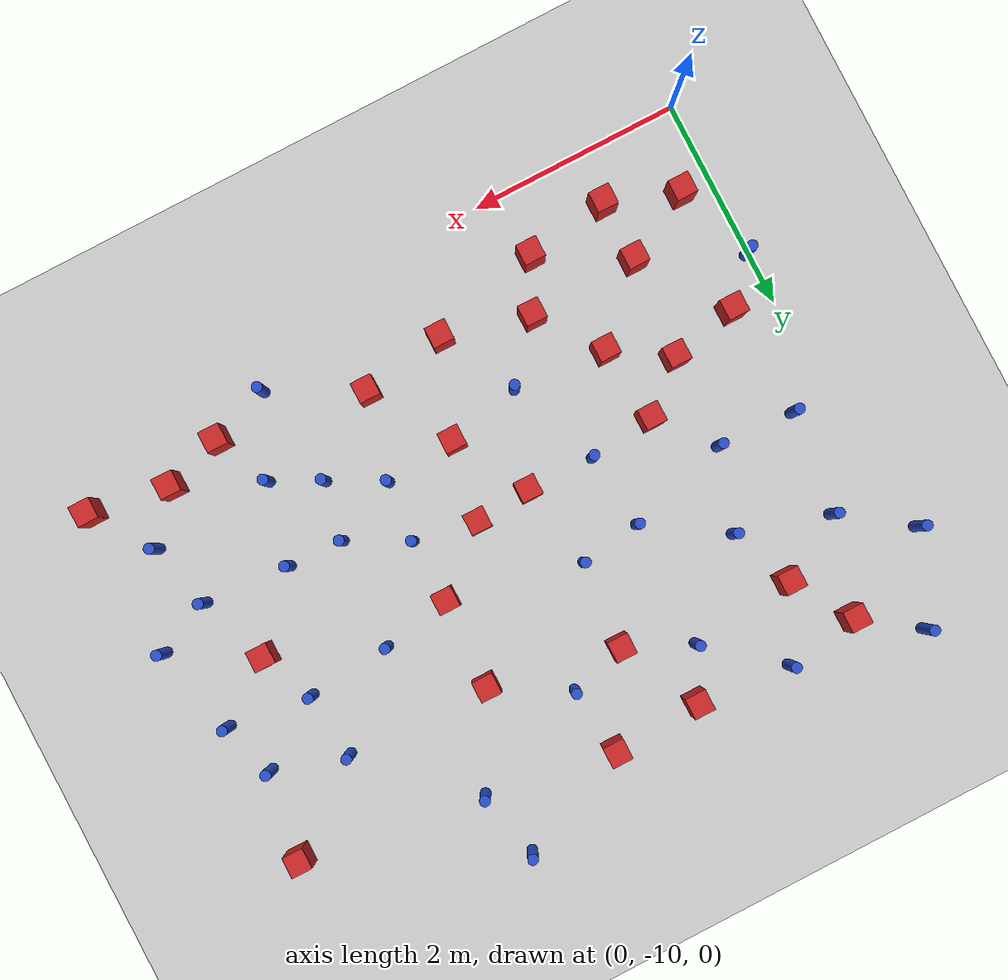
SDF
<sdf version="1.6">
 <world name="default">
  <model name="ground_plane">
   <static>1</static>
   <link name="link">
    <collision name="collision">
     <geometry><plane><normal>0 0 1</normal><size>100 100</size></plane></geometry>
     <surface><friction><ode><mu>100</mu><mu2>50</mu2></ode></friction></surface>
    </collision>
    <visual name="visual">
     <cast_shadows>0</cast_shadows>
     <geometry><plane><normal>0 0 1</normal><size>100 100</size></plane></geometry>
     <material>
      <ambient>1.0 1.0 1.0 1.0</ambient>
      <diffuse>0.8 0.8 0.8 1.0</diffuse>
      <specular>0.01 0.01 0.01 1.000000</specular>
     </material>
    </visual>
   </link>
  </model>
  <model name="square_post_obstacle1">
   <static>true</static>
   <pose>3.16889082667 -8.21501041184 1.91545236811e-07 -7.35059704564e-06 1.12565212e-07 2.39332434364e-05</pose>
   <link name="link">
    <pose>0 0 0.25 0 -0 0</pose>
    <inertial>
     <mass>100</mass>
     <inertia>
      <ixx>0.166667</ixx>
      <ixy>0</ixy>
      <ixz>0</ixz>
      <iyy>0.166667</iyy>
      <iyz>0</iyz>
      <izz>0.166667</izz>
     </inertia>
    </inertial>
    <collision name="collision"><geometry><box><size>.2 .2 .5</size></box></geometry></collision>
    <visual name="visual">
     <geometry><box><size>.2 .2 .5</size></box></geometry>
     <material>
      <script><name>Gazebo/Red</name><uri>file://media/materials/scripts/gazebo.material</uri></script>
     </material>
    </visual>
   </link>
  </model>
  <model name="square_post_obstacle12">
   <static>true</static>
   <pose>0.404167594741 -8.10818118871 1.91545236811e-07 -7.35059704564e-06 1.12565212e-07 2.39332434364e-05</pose>
   <link name="link">
    <pose>0 0 0.25 0 -0 0</pose>
    <inertial>
     <mass>100</mass>
     <inertia>
      <ixx>0.166667</ixx>
      <ixy>0</ixy>
      <ixz>0</ixz>
      <iyy>0.166667</iyy>
      <iyz>0</iyz>
      <izz>0.166667</izz>
     </inertia>
    </inertial>
    <collision name="collision"><geometry><box><size>.2 .2 .5</size></box></geometry></collision>
    <visual name="visual">
     <geometry><box><size>.2 .2 .5</size></box></geometry>
     <material>
      <script><name>Gazebo/Red</name><uri>file://media/materials/scripts/gazebo.material</uri></script>
     </material>
    </visual>
   </link>
  </model>
  <model name="square_post_obstacle15">
   <static>true</static>
   <pose>1.50309372421 -7.58272821332 1.91545236811e-07 -7.35059704564e-06 1.12565212e-07 2.39332434364e-05</pose>
   <link name="link">
    <pose>0 0 0.25 0 -0 0</pose>
    <inertial>
     <mass>100</mass>
     <inertia>
      <ixx>0.166667</ixx>
      <ixy>0</ixy>
      <ixz>0</ixz>
      <iyy>0.166667</iyy>
      <iyz>0</iyz>
      <izz>0.166667</izz>
     </inertia>
    </inertial>
    <collision name="collision"><geometry><box><size>.2 .2 .5</size></box></geometry></collision>
    <visual name="visual">
     <geometry><box><size>.2 .2 .5</size></box></geometry>
     <material>
      <script><name>Gazebo/Red</name><uri>file://media/materials/scripts/gazebo.material</uri></script>
     </material>
    </visual>
   </link>
  </model>
  <model name="square_post_obstacle16">
   <static>true</static>
   <pose>3.90854082336 -6.12980230415 1.91545236811e-07 -7.35059704564e-06 1.12565212e-07 2.39332434364e-05</pose>
   <link name="link">
    <pose>0 0 0.25 0 -0 0</pose>
    <inertial>
     <mass>100</mass>
     <inertia>
      <ixx>0.166667</ixx>
      <ixy>0</ixy>
      <ixz>0</ixz>
      <iyy>0.166667</iyy>
      <iyz>0</iyz>
      <izz>0.166667</izz>
     </inertia>
    </inertial>
    <collision name="collision"><geometry><box><size>.2 .2 .5</size></box></geometry></collision>
    <visual name="visual">
     <geometry><box><size>.2 .2 .5</size></box></geometry>
     <material>
      <script><name>Gazebo/Red</name><uri>file://media/materials/scripts/gazebo.material</uri></script>
     </material>
    </visual>
   </link>
  </model>
  <model name="square_post_obstacle18">
   <static>true</static>
   <pose>2.83658373215 -9.09488576402 1.91545236811e-07 -7.35059704564e-06 1.12565212e-07 2.39332434364e-05</pose>
   <link name="link">
    <pose>0 0 0.25 0 -0 0</pose>
    <inertial>
     <mass>100</mass>
     <inertia>
      <ixx>0.166667</ixx>
      <ixy>0</ixy>
      <ixz>0</ixz>
      <iyy>0.166667</iyy>
      <iyz>0</iyz>
      <izz>0.166667</izz>
     </inertia>
    </inertial>
    <collision name="collision"><geometry><box><size>.2 .2 .5</size></box></geometry></collision>
    <visual name="visual">
     <geometry><box><size>.2 .2 .5</size></box></geometry>
     <material>
      <script><name>Gazebo/Red</name><uri>file://media/materials/scripts/gazebo.material</uri></script>
     </material>
    </visual>
   </link>
  </model>
  <model name="square_post_obstacle26">
   <static>true</static>
   <pose>1.58247078217 -8.30444190628 1.91545236811e-07 -7.35059704564e-06 1.12565212e-07 2.39332434364e-05</pose>
   <link name="link">
    <pose>0 0 0.25 0 -0 0</pose>
    <inertial>
     <mass>100</mass>
     <inertia>
      <ixx>0.166667</ixx>
      <ixy>0</ixy>
      <ixz>0</ixz>
      <iyy>0.166667</iyy>
      <iyz>0</iyz>
      <izz>0.166667</izz>
     </inertia>
    </inertial>
    <collision name="collision"><geometry><box><size>.2 .2 .5</size></box></geometry></collision>
    <visual name="visual">
     <geometry><box><size>.2 .2 .5</size></box></geometry>
     <material>
      <script><name>Gazebo/Red</name><uri>file://media/materials/scripts/gazebo.material</uri></script>
     </material>
    </visual>
   </link>
  </model>
  <model name="pole_obstacle27">
   <static>true</static>
   <pose>2.04881909748 -6.78771270594 7.38925637345e-09 -8.47170692799e-08 1.24976765014e-08 -1.7451309302e-07</pose>
   <link name="link">
    <pose>0 0 0.3 0 -0 0</pose>
    <inertial>
     <mass>1</mass>
     <inertia><ixx>0.145833</ixx><ixy>0</ixy><ixz>0</ixz><iyy>0.145833</iyy><iyz>0</iyz><izz>0.125</izz></inertia>
    </inertial>
    <collision name="collision">
     <geometry><cylinder><radius>0.05</radius><length>.6</length></cylinder></geometry>
    </collision>
    <visual name="visual">
     <geometry><cylinder><radius>0.05</radius><length>.6</length></cylinder></geometry>
     <material>
      <script><name>Gazebo/Blue</name><uri>file://media/materials/scripts/gazebo.material</uri></script>
     </material>
    </visual>
   </link>
  </model>
  <model name="pole_obstacle36">
   <static>true</static>
   <pose>4.37151992922 -5.27097383217 7.38925637345e-09 -8.47170692796e-08 1.24976764786e-08 -1.74513093032e-07</pose>
   <link name="link">
    <pose>0 0 0.3 0 -0 0</pose>
    <inertial>
     <mass>1</mass>
     <inertia><ixx>0.145833</ixx><ixy>0</ixy><ixz>0</ixz><iyy>0.145833</iyy><iyz>0</iyz><izz>0.125</izz></inertia>
    </inertial>
    <collision name="collision">
     <geometry><cylinder><radius>0.05</radius><length>.6</length></cylinder></geometry>
    </collision>
    <visual name="visual">
     <geometry><cylinder><radius>0.05</radius><length>.6</length></cylinder></geometry>
     <material>
      <script><name>Gazebo/Blue</name><uri>file://media/materials/scripts/gazebo.material</uri></script>
     </material>
    </visual>
   </link>
  </model>
  <model name="pole_obstacle37">
   <static>true</static>
   <pose>5.33299857243 -6.77661825422 7.38925637345e-09 -8.47170692796e-08 1.24976764786e-08 -1.74513093032e-07</pose>
   <link name="link">
    <pose>0 0 0.3 0 -0 0</pose>
    <inertial>
     <mass>1</mass>
     <inertia><ixx>0.145833</ixx><ixy>0</ixy><ixz>0</ixz><iyy>0.145833</iyy><iyz>0</iyz><izz>0.125</izz></inertia>
    </inertial>
    <collision name="collision">
     <geometry><cylinder><radius>0.05</radius><length>.6</length></cylinder></geometry>
    </collision>
    <visual name="visual">
     <geometry><cylinder><radius>0.05</radius><length>.6</length></cylinder></geometry>
     <material>
      <script><name>Gazebo/Blue</name><uri>file://media/materials/scripts/gazebo.material</uri></script>
     </material>
    </visual>
   </link>
  </model>
  <model name="pole_obstacle40">
   <static>true</static>
   <pose>4.47637173607 -9.40463256713 7.38925637345e-09 -8.471706928e-08 1.24976765081e-08 -1.74513093015e-07</pose>
   <link name="link">
    <pose>0 0 0.3 0 -0 0</pose>
    <inertial>
     <mass>1</mass>
     <inertia><ixx>0.145833</ixx><ixy>0</ixy><ixz>0</ixz><iyy>0.145833</iyy><iyz>0</iyz><izz>0.125</izz></inertia>
    </inertial>
    <collision name="collision">
     <geometry><cylinder><radius>0.05</radius><length>.6</length></cylinder></geometry>
    </collision>
    <visual name="visual">
     <geometry><cylinder><radius>0.05</radius><length>.6</length></cylinder></geometry>
     <material>
      <script><name>Gazebo/Blue</name><uri>file://media/materials/scripts/gazebo.material</uri></script>
     </material>
    </visual>
   </link>
  </model>
  <model name="pole_obstacle42">
   <static>true</static>
   <pose>1.07115340988 -7.07195160746 7.38925637345e-09 -8.47170692799e-08 1.24976765033e-08 -1.74513093018e-07</pose>
   <link name="link">
    <pose>0 0 0.3 0 -0 0</pose>
    <inertial>
     <mass>1</mass>
     <inertia><ixx>0.145833</ixx><ixy>0</ixy><ixz>0</ixz><iyy>0.145833</iyy><iyz>0</iyz><izz>0.125</izz></inertia>
    </inertial>
    <collision name="collision">
     <geometry><cylinder><radius>0.05</radius><length>.6</length></cylinder></geometry>
    </collision>
    <visual name="visual">
     <geometry><cylinder><radius>0.05</radius><length>.6</length></cylinder></geometry>
     <material>
      <script><name>Gazebo/Blue</name><uri>file://media/materials/scripts/gazebo.material</uri></script>
     </material>
    </visual>
   </link>
  </model>
  <model name="pole_obstacle45">
   <static>true</static>
   <pose>0.453988505634 -6.06256383963 7.38925637345e-09 -8.471706928e-08 1.24976765095e-08 -1.74513093014e-07</pose>
   <link name="link">
    <pose>0 0 0.3 0 -0 0</pose>
    <inertial>
     <mass>1</mass>
     <inertia><ixx>0.145833</ixx><ixy>0</ixy><ixz>0</ixz><iyy>0.145833</iyy><iyz>0</iyz><izz>0.125</izz></inertia>
    </inertial>
    <collision name="collision">
     <geometry><cylinder><radius>0.05</radius><length>.6</length></cylinder></geometry>
    </collision>
    <visual name="visual">
     <geometry><cylinder><radius>0.05</radius><length>.6</length></cylinder></geometry>
     <material>
      <script><name>Gazebo/Blue</name><uri>file://media/materials/scripts/gazebo.material</uri></script>
     </material>
    </visual>
   </link>
  </model>
  <model name="square_post_obstacle44">
   <static>true</static>
   <pose>1.05257040129 -7.96837718606 1.91545236811e-07 -7.35059704564e-06 1.12565212e-07 2.39332434364e-05</pose>
   <link name="link">
    <pose>0 0 0.25 0 -0 0</pose>
    <inertial>
     <mass>100</mass>
     <inertia>
      <ixx>0.166667</ixx>
      <ixy>0</ixy>
      <ixz>0</ixz>
      <iyy>0.166667</iyy>
      <iyz>0</iyz>
      <izz>0.166667</izz>
     </inertia>
    </inertial>
    <collision name="collision"><geometry><box><size>.2 .2 .5</size></box></geometry></collision>
    <visual name="visual">
     <geometry><box><size>.2 .2 .5</size></box></geometry>
     <material>
      <script><name>Gazebo/Red</name><uri>file://media/materials/scripts/gazebo.material</uri></script>
     </material>
    </visual>
   </link>
  </model>
  <model name="pole_obstacle48">
   <static>true</static>
   <pose>3.84900225517 -8.15671670072 7.38925637345e-09 -8.47170692793e-08 1.24976764408e-08 -1.74513093041e-07</pose>
   <link name="link">
    <pose>0 0 0.3 0 -0 0</pose>
    <inertial>
     <mass>1</mass>
     <inertia><ixx>0.145833</ixx><ixy>0</ixy><ixz>0</ixz><iyy>0.145833</iyy><iyz>0</iyz><izz>0.125</izz></inertia>
    </inertial>
    <collision name="collision">
     <geometry><cylinder><radius>0.05</radius><length>.6</length></cylinder></geometry>
    </collision>
    <visual name="visual">
     <geometry><cylinder><radius>0.05</radius><length>.6</length></cylinder></geometry>
     <material>
      <script><name>Gazebo/Blue</name><uri>file://media/materials/scripts/gazebo.material</uri></script>
     </material>
    </visual>
   </link>
  </model>
  <model name="pole_obstacle49">
   <static>true</static>
   <pose>2.0757942542 -5.59627467232 7.38925637345e-09 -8.47170692798e-08 1.24976765033e-08 -1.74513093019e-07</pose>
   <link name="link">
    <pose>0 0 0.3 0 -0 0</pose>
    <inertial>
     <mass>1</mass>
     <inertia><ixx>0.145833</ixx><ixy>0</ixy><ixz>0</ixz><iyy>0.145833</iyy><iyz>0</iyz><izz>0.125</izz></inertia>
    </inertial>
    <collision name="collision">
     <geometry><cylinder><radius>0.05</radius><length>.6</length></cylinder></geometry>
    </collision>
    <visual name="visual">
     <geometry><cylinder><radius>0.05</radius><length>.6</length></cylinder></geometry>
     <material>
      <script><name>Gazebo/Blue</name><uri>file://media/materials/scripts/gazebo.material</uri></script>
     </material>
    </visual>
   </link>
  </model>
  <model name="pole_obstacle51">
   <static>true</static>
   <pose>3.89824620744 -7.58099984465 7.38925637345e-09 -8.47170692798e-08 1.24976765033e-08 -1.74513093019e-07</pose>
   <link name="link">
    <pose>0 0 0.3 0 -0 0</pose>
    <inertial>
     <mass>1</mass>
     <inertia><ixx>0.145833</ixx><ixy>0</ixy><ixz>0</ixz><iyy>0.145833</iyy><iyz>0</iyz><izz>0.125</izz></inertia>
    </inertial>
    <collision name="collision">
     <geometry><cylinder><radius>0.05</radius><length>.6</length></cylinder></geometry>
    </collision>
    <visual name="visual">
     <geometry><cylinder><radius>0.05</radius><length>.6</length></cylinder></geometry>
     <material>
      <script><name>Gazebo/Blue</name><uri>file://media/materials/scripts/gazebo.material</uri></script>
     </material>
    </visual>
   </link>
  </model>
  <model name="square_post_obstacle69">
   <static>true</static>
   <pose>0.976133610761 -8.91479069162 1.91545236811e-07 -7.35059704564e-06 1.12565212e-07 2.39332434364e-05</pose>
   <link name="link">
    <pose>0 0 0.25 0 -0 0</pose>
    <inertial>
     <mass>100</mass>
     <inertia>
      <ixx>0.166667</ixx>
      <ixy>0</ixy>
      <ixz>0</ixz>
      <iyy>0.166667</iyy>
      <iyz>0</iyz>
      <izz>0.166667</izz>
     </inertia>
    </inertial>
    <collision name="collision"><geometry><box><size>.2 .2 .5</size></box></geometry></collision>
    <visual name="visual">
     <geometry><box><size>.2 .2 .5</size></box></geometry>
     <material>
      <script><name>Gazebo/Red</name><uri>file://media/materials/scripts/gazebo.material</uri></script>
     </material>
    </visual>
   </link>
  </model>
  <model name="pole_obstacle76">
   <static>true</static>
   <pose>4.98600005805 -7.89811427196 7.38925637345e-09 -8.47170692796e-08 1.24976764786e-08 -1.74513093032e-07</pose>
   <link name="link">
    <pose>0 0 0.3 0 -0 0</pose>
    <inertial>
     <mass>1</mass>
     <inertia><ixx>0.145833</ixx><ixy>0</ixy><ixz>0</ixz><iyy>0.145833</iyy><iyz>0</iyz><izz>0.125</izz></inertia>
    </inertial>
    <collision name="collision">
     <geometry><cylinder><radius>0.05</radius><length>.6</length></cylinder></geometry>
    </collision>
    <visual name="visual">
     <geometry><cylinder><radius>0.05</radius><length>.6</length></cylinder></geometry>
     <material>
      <script><name>Gazebo/Blue</name><uri>file://media/materials/scripts/gazebo.material</uri></script>
     </material>
    </visual>
   </link>
  </model>
  <model name="pole_obstacle79">
   <static>true</static>
   <pose>6.1250744416 -6.87208545024 7.38925637345e-09 -8.47170692796e-08 1.24976764786e-08 -1.74513093032e-07</pose>
   <link name="link">
    <pose>0 0 0.3 0 -0 0</pose>
    <inertial>
     <mass>1</mass>
     <inertia><ixx>0.145833</ixx><ixy>0</ixy><ixz>0</ixz><iyy>0.145833</iyy><iyz>0</iyz><izz>0.125</izz></inertia>
    </inertial>
    <collision name="collision">
     <geometry><cylinder><radius>0.05</radius><length>.6</length></cylinder></geometry>
    </collision>
    <visual name="visual">
     <geometry><cylinder><radius>0.05</radius><length>.6</length></cylinder></geometry>
     <material>
      <script><name>Gazebo/Blue</name><uri>file://media/materials/scripts/gazebo.material</uri></script>
     </material>
    </visual>
   </link>
  </model>
  <model name="square_post_obstacle79">
   <static>true</static>
   <pose>6.08900909891 -5.53988913729 1.91545236811e-07 -7.35059704564e-06 1.12565212e-07 2.39332434364e-05</pose>
   <link name="link">
    <pose>0 0 0.25 0 -0 0</pose>
    <inertial>
     <mass>100</mass>
     <inertia>
      <ixx>0.166667</ixx>
      <ixy>0</ixy>
      <ixz>0</ixz>
      <iyy>0.166667</iyy>
      <iyz>0</iyz>
      <izz>0.166667</izz>
     </inertia>
    </inertial>
    <collision name="collision"><geometry><box><size>.2 .2 .5</size></box></geometry></collision>
    <visual name="visual">
     <geometry><box><size>.2 .2 .5</size></box></geometry>
     <material>
      <script><name>Gazebo/Red</name><uri>file://media/materials/scripts/gazebo.material</uri></script>
     </material>
    </visual>
   </link>
  </model>
  <model name="pole_obstacle80">
   <static>true</static>
   <pose>6.33364297572 -7.72173572609 7.38925637345e-09 -8.47170692796e-08 1.24976764786e-08 -1.74513093032e-07</pose>
   <link name="link">
    <pose>0 0 0.3 0 -0 0</pose>
    <inertial>
     <mass>1</mass>
     <inertia><ixx>0.145833</ixx><ixy>0</ixy><ixz>0</ixz><iyy>0.145833</iyy><iyz>0</iyz><izz>0.125</izz></inertia>
    </inertial>
    <collision name="collision">
     <geometry><cylinder><radius>0.05</radius><length>.6</length></cylinder></geometry>
    </collision>
    <visual name="visual">
     <geometry><cylinder><radius>0.05</radius><length>.6</length></cylinder></geometry>
     <material>
      <script><name>Gazebo/Blue</name><uri>file://media/materials/scripts/gazebo.material</uri></script>
     </material>
    </visual>
   </link>
  </model>
  <model name="pole_obstacle85">
   <static>true</static>
   <pose>2.12412852441 -7.50402201474 7.38925637345e-09 -8.47170692798e-08 1.24976765033e-08 -1.74513093019e-07</pose>
   <link name="link">
    <pose>0 0 0.3 0 -0 0</pose>
    <inertial>
     <mass>1</mass>
     <inertia><ixx>0.145833</ixx><ixy>0</ixy><ixz>0</ixz><iyy>0.145833</iyy><iyz>0</iyz><izz>0.125</izz></inertia>
    </inertial>
    <collision name="collision">
     <geometry><cylinder><radius>0.05</radius><length>.6</length></cylinder></geometry>
    </collision>
    <visual name="visual">
     <geometry><cylinder><radius>0.05</radius><length>.6</length></cylinder></geometry>
     <material>
      <script><name>Gazebo/Blue</name><uri>file://media/materials/scripts/gazebo.material</uri></script>
     </material>
    </visual>
   </link>
  </model>
  <model name="square_post_obstacle80">
   <static>true</static>
   <pose>3.64129434278 -8.9638723024 1.91545236811e-07 -7.35059704564e-06 1.12565212e-07 2.39332434364e-05</pose>
   <link name="link">
    <pose>0 0 0.25 0 -0 0</pose>
    <inertial>
     <mass>100</mass>
     <inertia>
      <ixx>0.166667</ixx>
      <ixy>0</ixy>
      <ixz>0</ixz>
      <iyy>0.166667</iyy>
      <iyz>0</iyz>
      <izz>0.166667</izz>
     </inertia>
    </inertial>
    <collision name="collision"><geometry><box><size>.2 .2 .5</size></box></geometry></collision>
    <visual name="visual">
     <geometry><box><size>.2 .2 .5</size></box></geometry>
     <material>
      <script><name>Gazebo/Red</name><uri>file://media/materials/scripts/gazebo.material</uri></script>
     </material>
    </visual>
   </link>
  </model>
  <model name="pole_obstacle92">
   <static>true</static>
   <pose>4.53692902009 -6.8501888442 7.38925637345e-09 -8.47170692796e-08 1.24976764786e-08 -1.74513093032e-07</pose>
   <link name="link">
    <pose>0 0 0.3 0 -0 0</pose>
    <inertial>
     <mass>1</mass>
     <inertia><ixx>0.145833</ixx><ixy>0</ixy><ixz>0</ixz><iyy>0.145833</iyy><iyz>0</iyz><izz>0.125</izz></inertia>
    </inertial>
    <collision name="collision">
     <geometry><cylinder><radius>0.05</radius><length>.6</length></cylinder></geometry>
    </collision>
    <visual name="visual">
     <geometry><cylinder><radius>0.05</radius><length>.6</length></cylinder></geometry>
     <material>
      <script><name>Gazebo/Blue</name><uri>file://media/materials/scripts/gazebo.material</uri></script>
     </material>
    </visual>
   </link>
  </model>
  <model name="pole_obstacle94">
   <static>true</static>
   <pose>5.96373415103 -8.58227947369 7.38925637345e-09 -8.471706928e-08 1.24976765081e-08 -1.74513093015e-07</pose>
   <link name="link">
    <pose>0 0 0.3 0 -0 0</pose>
    <inertial>
     <mass>1</mass>
     <inertia><ixx>0.145833</ixx><ixy>0</ixy><ixz>0</ixz><iyy>0.145833</iyy><iyz>0</iyz><izz>0.125</izz></inertia>
    </inertial>
    <collision name="collision">
     <geometry><cylinder><radius>0.05</radius><length>.6</length></cylinder></geometry>
    </collision>
    <visual name="visual">
     <geometry><cylinder><radius>0.05</radius><length>.6</length></cylinder></geometry>
     <material>
      <script><name>Gazebo/Blue</name><uri>file://media/materials/scripts/gazebo.material</uri></script>
     </material>
    </visual>
   </link>
  </model>
  <model name="pole_obstacle95">
   <static>true</static>
   <pose>0.0353014993979 -8.49636491938 7.38925637345e-09 -8.47170692796e-08 1.24976764747e-08 -1.74513093035e-07</pose>
   <link name="link">
    <pose>0 0 0.3 0 -0 0</pose>
    <inertial>
     <mass>1</mass>
     <inertia><ixx>0.145833</ixx><ixy>0</ixy><ixz>0</ixz><iyy>0.145833</iyy><iyz>0</iyz><izz>0.125</izz></inertia>
    </inertial>
    <collision name="collision">
     <geometry><cylinder><radius>0.05</radius><length>.6</length></cylinder></geometry>
    </collision>
    <visual name="visual">
     <geometry><cylinder><radius>0.05</radius><length>.6</length></cylinder></geometry>
     <material>
      <script><name>Gazebo/Blue</name><uri>file://media/materials/scripts/gazebo.material</uri></script>
     </material>
    </visual>
   </link>
  </model>
  <model name="square_post_obstacle86">
   <static>true</static>
   <pose>2.6891353956 -5.88927801813 1.91545236811e-07 -7.35059704564e-06 1.12565212e-07 2.39332434364e-05</pose>
   <link name="link">
    <pose>0 0 0.25 0 -0 0</pose>
    <inertial>
     <mass>100</mass>
     <inertia>
      <ixx>0.166667</ixx>
      <ixy>0</ixy>
      <ixz>0</ixz>
      <iyy>0.166667</iyy>
      <iyz>0</iyz>
      <izz>0.166667</izz>
     </inertia>
    </inertial>
    <collision name="collision"><geometry><box><size>.2 .2 .5</size></box></geometry></collision>
    <visual name="visual">
     <geometry><box><size>.2 .2 .5</size></box></geometry>
     <material>
      <script><name>Gazebo/Red</name><uri>file://media/materials/scripts/gazebo.material</uri></script>
     </material>
    </visual>
   </link>
  </model>
  <model name="square_post_obstacle87">
   <static>true</static>
   <pose>3.15219123084 -5.08765713504 1.91545236811e-07 -7.35059704564e-06 1.12565212e-07 2.39332434364e-05</pose>
   <link name="link">
    <pose>0 0 0.25 0 -0 0</pose>
    <inertial>
     <mass>100</mass>
     <inertia>
      <ixx>0.166667</ixx>
      <ixy>0</ixy>
      <ixz>0</ixz>
      <iyy>0.166667</iyy>
      <iyz>0</iyz>
      <izz>0.166667</izz>
     </inertia>
    </inertial>
    <collision name="collision"><geometry><box><size>.2 .2 .5</size></box></geometry></collision>
    <visual name="visual">
     <geometry><box><size>.2 .2 .5</size></box></geometry>
     <material>
      <script><name>Gazebo/Red</name><uri>file://media/materials/scripts/gazebo.material</uri></script>
     </material>
    </visual>
   </link>
  </model>
  <model name="pole_obstacle99">
   <static>true</static>
   <pose>1.4203689856 -5.03889295285 7.38925637345e-09 -8.47170692799e-08 1.24976765033e-08 -1.74513093018e-07</pose>
   <link name="link">
    <pose>0 0 0.3 0 -0 0</pose>
    <inertial>
     <mass>1</mass>
     <inertia><ixx>0.145833</ixx><ixy>0</ixy><ixz>0</ixz><iyy>0.145833</iyy><iyz>0</iyz><izz>0.125</izz></inertia>
    </inertial>
    <collision name="collision">
     <geometry><cylinder><radius>0.05</radius><length>.6</length></cylinder></geometry>
    </collision>
    <visual name="visual">
     <geometry><cylinder><radius>0.05</radius><length>.6</length></cylinder></geometry>
     <material>
      <script><name>Gazebo/Blue</name><uri>file://media/materials/scripts/gazebo.material</uri></script>
     </material>
    </visual>
   </link>
  </model>
  <model name="pole_obstacle102">
   <static>true</static>
   <pose>5.80563965369 -7.9541600659 7.38925637345e-09 -8.47170692798e-08 1.24976764934e-08 -1.74513093022e-07</pose>
   <link name="link">
    <pose>0 0 0.3 0 -0 0</pose>
    <inertial>
     <mass>1</mass>
     <inertia><ixx>0.145833</ixx><ixy>0</ixy><ixz>0</ixz><iyy>0.145833</iyy><iyz>0</iyz><izz>0.125</izz></inertia>
    </inertial>
    <collision name="collision">
     <geometry><cylinder><radius>0.05</radius><length>.6</length></cylinder></geometry>
    </collision>
    <visual name="visual">
     <geometry><cylinder><radius>0.05</radius><length>.6</length></cylinder></geometry>
     <material>
      <script><name>Gazebo/Blue</name><uri>file://media/materials/scripts/gazebo.material</uri></script>
     </material>
    </visual>
   </link>
  </model>
  <model name="pole_obstacle104">
   <static>true</static>
   <pose>2.62844273395 -6.70634367094 7.38925637345e-09 -8.47170692798e-08 1.24976765033e-08 -1.74513093019e-07</pose>
   <link name="link">
    <pose>0 0 0.3 0 -0 0</pose>
    <inertial>
     <mass>1</mass>
     <inertia><ixx>0.145833</ixx><ixy>0</ixy><ixz>0</ixz><iyy>0.145833</iyy><iyz>0</iyz><izz>0.125</izz></inertia>
    </inertial>
    <collision name="collision">
     <geometry><cylinder><radius>0.05</radius><length>.6</length></cylinder></geometry>
    </collision>
    <visual name="visual">
     <geometry><cylinder><radius>0.05</radius><length>.6</length></cylinder></geometry>
     <material>
      <script><name>Gazebo/Blue</name><uri>file://media/materials/scripts/gazebo.material</uri></script>
     </material>
    </visual>
   </link>
  </model>
  <model name="pole_obstacle107">
   <static>true</static>
   <pose>4.80425819799 -8.66041935658 7.38925637345e-09 -8.471706928e-08 1.24976765081e-08 -1.74513093015e-07</pose>
   <link name="link">
    <pose>0 0 0.3 0 -0 0</pose>
    <inertial>
     <mass>1</mass>
     <inertia><ixx>0.145833</ixx><ixy>0</ixy><ixz>0</ixz><iyy>0.145833</iyy><iyz>0</iyz><izz>0.125</izz></inertia>
    </inertial>
    <collision name="collision">
     <geometry><cylinder><radius>0.05</radius><length>.6</length></cylinder></geometry>
    </collision>
    <visual name="visual">
     <geometry><cylinder><radius>0.05</radius><length>.6</length></cylinder></geometry>
     <material>
      <script><name>Gazebo/Blue</name><uri>file://media/materials/scripts/gazebo.material</uri></script>
     </material>
    </visual>
   </link>
  </model>
  <model name="pole_obstacle119">
   <static>true</static>
   <pose>1.32039328863 -6.31213944114 7.38925637345e-09 -8.47170692799e-08 1.24976765033e-08 -1.74513093018e-07</pose>
   <link name="link">
    <pose>0 0 0.3 0 -0 0</pose>
    <inertial>
     <mass>1</mass>
     <inertia><ixx>0.145833</ixx><ixy>0</ixy><ixz>0</ixz><iyy>0.145833</iyy><iyz>0</iyz><izz>0.125</izz></inertia>
    </inertial>
    <collision name="collision">
     <geometry><cylinder><radius>0.05</radius><length>.6</length></cylinder></geometry>
    </collision>
    <visual name="visual">
     <geometry><cylinder><radius>0.05</radius><length>.6</length></cylinder></geometry>
     <material>
      <script><name>Gazebo/Blue</name><uri>file://media/materials/scripts/gazebo.material</uri></script>
     </material>
    </visual>
   </link>
  </model>
  <model name="pole_obstacle133">
   <static>true</static>
   <pose>4.23373145328 -4.62745117712 7.38925637345e-09 -8.47170692796e-08 1.24976764786e-08 -1.74513093032e-07</pose>
   <link name="link">
    <pose>0 0 0.3 0 -0 0</pose>
    <inertial>
     <mass>1</mass>
     <inertia><ixx>0.145833</ixx><ixy>0</ixy><ixz>0</ixz><iyy>0.145833</iyy><iyz>0</iyz><izz>0.125</izz></inertia>
    </inertial>
    <collision name="collision">
     <geometry><cylinder><radius>0.05</radius><length>.6</length></cylinder></geometry>
    </collision>
    <visual name="visual">
     <geometry><cylinder><radius>0.05</radius><length>.6</length></cylinder></geometry>
     <material>
      <script><name>Gazebo/Blue</name><uri>file://media/materials/scripts/gazebo.material</uri></script>
     </material>
    </visual>
   </link>
  </model>
  <model name="square_post_obstacle117">
   <static>true</static>
   <pose>5.58993341875 -9.02146138765 1.91545236811e-07 -7.35059704564e-06 1.12565212e-07 2.39332434364e-05</pose>
   <link name="link">
    <pose>0 0 0.25 0 -0 0</pose>
    <inertial>
     <mass>100</mass>
     <inertia>
      <ixx>0.166667</ixx>
      <ixy>0</ixy>
      <ixz>0</ixz>
      <iyy>0.166667</iyy>
      <iyz>0</iyz>
      <izz>0.166667</izz>
     </inertia>
    </inertial>
    <collision name="collision"><geometry><box><size>.2 .2 .5</size></box></geometry></collision>
    <visual name="visual">
     <geometry><box><size>.2 .2 .5</size></box></geometry>
     <material>
      <script><name>Gazebo/Red</name><uri>file://media/materials/scripts/gazebo.material</uri></script>
     </material>
    </visual>
   </link>
  </model>
  <model name="pole_obstacle141">
   <static>true</static>
   <pose>5.96686496204 -6.35198711508 7.38925637345e-09 -8.47170692796e-08 1.24976764786e-08 -1.74513093032e-07</pose>
   <link name="link">
    <pose>0 0 0.3 0 -0 0</pose>
    <inertial>
     <mass>1</mass>
     <inertia><ixx>0.145833</ixx><ixy>0</ixy><ixz>0</ixz><iyy>0.145833</iyy><iyz>0</iyz><izz>0.125</izz></inertia>
    </inertial>
    <collision name="collision">
     <geometry><cylinder><radius>0.05</radius><length>.6</length></cylinder></geometry>
    </collision>
    <visual name="visual">
     <geometry><cylinder><radius>0.05</radius><length>.6</length></cylinder></geometry>
     <material>
      <script><name>Gazebo/Blue</name><uri>file://media/materials/scripts/gazebo.material</uri></script>
     </material>
    </visual>
   </link>
  </model>
  <model name="pole_obstacle154">
   <static>true</static>
   <pose>5.27653899273 -6.15136023852 7.38925637345e-09 -8.47170692796e-08 1.24976764786e-08 -1.74513093032e-07</pose>
   <link name="link">
    <pose>0 0 0.3 0 -0 0</pose>
    <inertial>
     <mass>1</mass>
     <inertia><ixx>0.145833</ixx><ixy>0</ixy><ixz>0</ixz><iyy>0.145833</iyy><iyz>0</iyz><izz>0.125</izz></inertia>
    </inertial>
    <collision name="collision">
     <geometry><cylinder><radius>0.05</radius><length>.6</length></cylinder></geometry>
    </collision>
    <visual name="visual">
     <geometry><cylinder><radius>0.05</radius><length>.6</length></cylinder></geometry>
     <material>
      <script><name>Gazebo/Blue</name><uri>file://media/materials/scripts/gazebo.material</uri></script>
     </material>
    </visual>
   </link>
  </model>
  <model name="square_post_obstacle152">
   <static>true</static>
   <pose>5.54954461204 -7.28513214056 1.91545236811e-07 -7.35059704564e-06 1.12565212e-07 2.39332434364e-05</pose>
   <link name="link">
    <pose>0 0 0.25 0 -0 0</pose>
    <inertial>
     <mass>100</mass>
     <inertia>
      <ixx>0.166667</ixx>
      <ixy>0</ixy>
      <ixz>0</ixz>
      <iyy>0.166667</iyy>
      <iyz>0</iyz>
      <izz>0.166667</izz>
     </inertia>
    </inertial>
    <collision name="collision"><geometry><box><size>.2 .2 .5</size></box></geometry></collision>
    <visual name="visual">
     <geometry><box><size>.2 .2 .5</size></box></geometry>
     <material>
      <script><name>Gazebo/Red</name><uri>file://media/materials/scripts/gazebo.material</uri></script>
     </material>
    </visual>
   </link>
  </model>
  <model name="square_post_obstacle157">
   <static>true</static>
   <pose>0.729921868355 -5.16422768485 1.91545236811e-07 -7.35059704564e-06 1.12565212e-07 2.39332434364e-05</pose>
   <link name="link">
    <pose>0 0 0.25 0 -0 0</pose>
    <inertial>
     <mass>100</mass>
     <inertia>
      <ixx>0.166667</ixx>
      <ixy>0</ixy>
      <ixz>0</ixz>
      <iyy>0.166667</iyy>
      <iyz>0</iyz>
      <izz>0.166667</izz>
     </inertia>
    </inertial>
    <collision name="collision"><geometry><box><size>.2 .2 .5</size></box></geometry></collision>
    <visual name="visual">
     <geometry><box><size>.2 .2 .5</size></box></geometry>
     <material>
      <script><name>Gazebo/Red</name><uri>file://media/materials/scripts/gazebo.material</uri></script>
     </material>
    </visual>
   </link>
  </model>
  <model name="pole_obstacle166">
   <static>true</static>
   <pose>2.45987850874 -8.37513520612 7.38925637345e-09 -8.47170692793e-08 1.24976764408e-08 -1.74513093041e-07</pose>
   <link name="link">
    <pose>0 0 0.3 0 -0 0</pose>
    <inertial>
     <mass>1</mass>
     <inertia><ixx>0.145833</ixx><ixy>0</ixy><ixz>0</ixz><iyy>0.145833</iyy><iyz>0</iyz><izz>0.125</izz></inertia>
    </inertial>
    <collision name="collision">
     <geometry><cylinder><radius>0.05</radius><length>.6</length></cylinder></geometry>
    </collision>
    <visual name="visual">
     <geometry><cylinder><radius>0.05</radius><length>.6</length></cylinder></geometry>
     <material>
      <script><name>Gazebo/Blue</name><uri>file://media/materials/scripts/gazebo.material</uri></script>
     </material>
    </visual>
   </link>
  </model>
  <model name="pole_obstacle180">
   <static>true</static>
   <pose>0.338082872368 -7.03183591167 7.38925637345e-09 -8.471706928e-08 1.24976765079e-08 -1.74513093015e-07</pose>
   <link name="link">
    <pose>0 0 0.3 0 -0 0</pose>
    <inertial>
     <mass>1</mass>
     <inertia><ixx>0.145833</ixx><ixy>0</ixy><ixz>0</ixz><iyy>0.145833</iyy><iyz>0</iyz><izz>0.125</izz></inertia>
    </inertial>
    <collision name="collision">
     <geometry><cylinder><radius>0.05</radius><length>.6</length></cylinder></geometry>
    </collision>
    <visual name="visual">
     <geometry><cylinder><radius>0.05</radius><length>.6</length></cylinder></geometry>
     <material>
      <script><name>Gazebo/Blue</name><uri>file://media/materials/scripts/gazebo.material</uri></script>
     </material>
    </visual>
   </link>
  </model>
  <model name="square_post_obstacle174">
   <static>true</static>
   <pose>3.3027437905 -7.47191266841 1.91545236811e-07 -7.35059704564e-06 1.12565212e-07 2.39332434364e-05</pose>
   <link name="link">
    <pose>0 0 0.25 0 -0 0</pose>
    <inertial>
     <mass>100</mass>
     <inertia>
      <ixx>0.166667</ixx>
      <ixy>0</ixy>
      <ixz>0</ixz>
      <iyy>0.166667</iyy>
      <iyz>0</iyz>
      <izz>0.166667</izz>
     </inertia>
    </inertial>
    <collision name="collision"><geometry><box><size>.2 .2 .5</size></box></geometry></collision>
    <visual name="visual">
     <geometry><box><size>.2 .2 .5</size></box></geometry>
     <material>
      <script><name>Gazebo/Red</name><uri>file://media/materials/scripts/gazebo.material</uri></script>
     </material>
    </visual>
   </link>
  </model>
  <model name="square_post_obstacle184">
   <static>true</static>
   <pose>6.34705862288 -9.14331232493 1.91545236811e-07 -7.35059704564e-06 1.12565212e-07 2.39332434364e-05</pose>
   <link name="link">
    <pose>0 0 0.25 0 -0 0</pose>
    <inertial>
     <mass>100</mass>
     <inertia>
      <ixx>0.166667</ixx>
      <ixy>0</ixy>
      <ixz>0</ixz>
      <iyy>0.166667</iyy>
      <iyz>0</iyz>
      <izz>0.166667</izz>
     </inertia>
    </inertial>
    <collision name="collision"><geometry><box><size>.2 .2 .5</size></box></geometry></collision>
    <visual name="visual">
     <geometry><box><size>.2 .2 .5</size></box></geometry>
     <material>
      <script><name>Gazebo/Red</name><uri>file://media/materials/scripts/gazebo.material</uri></script>
     </material>
    </visual>
   </link>
  </model>
  <model name="square_post_obstacle187">
   <static>true</static>
   <pose>0.317009208784 -9.25862146355 1.91545236811e-07 -7.35059704564e-06 1.12565212e-07 2.39332434364e-05</pose>
   <link name="link">
    <pose>0 0 0.25 0 -0 0</pose>
    <inertial>
     <mass>100</mass>
     <inertia>
      <ixx>0.166667</ixx>
      <ixy>0</ixy>
      <ixz>0</ixz>
      <iyy>0.166667</iyy>
      <iyz>0</iyz>
      <izz>0.166667</izz>
     </inertia>
    </inertial>
    <collision name="collision"><geometry><box><size>.2 .2 .5</size></box></geometry></collision>
    <visual name="visual">
     <geometry><box><size>.2 .2 .5</size></box></geometry>
     <material>
      <script><name>Gazebo/Red</name><uri>file://media/materials/scripts/gazebo.material</uri></script>
     </material>
    </visual>
   </link>
  </model>
  <model name="square_post_obstacle188">
   <static>true</static>
   <pose>2.77261300172 -7.51752103108 1.91545236811e-07 -7.35059704564e-06 1.12565212e-07 2.39332434364e-05</pose>
   <link name="link">
    <pose>0 0 0.25 0 -0 0</pose>
    <inertial>
     <mass>100</mass>
     <inertia>
      <ixx>0.166667</ixx>
      <ixy>0</ixy>
      <ixz>0</ixz>
      <iyy>0.166667</iyy>
      <iyz>0</iyz>
      <izz>0.166667</izz>
     </inertia>
    </inertial>
    <collision name="collision"><geometry><box><size>.2 .2 .5</size></box></geometry></collision>
    <visual name="visual">
     <geometry><box><size>.2 .2 .5</size></box></geometry>
     <material>
      <script><name>Gazebo/Red</name><uri>file://media/materials/scripts/gazebo.material</uri></script>
     </material>
    </visual>
   </link>
  </model>
  <model name="square_post_obstacle189">
   <static>true</static>
   <pose>1.08678545792 -5.71863533517 1.91545236811e-07 -7.35059704564e-06 1.12565212e-07 2.39332434364e-05</pose>
   <link name="link">
    <pose>0 0 0.25 0 -0 0</pose>
    <inertial>
     <mass>100</mass>
     <inertia>
      <ixx>0.166667</ixx>
      <ixy>0</ixy>
      <ixz>0</ixz>
      <iyy>0.166667</iyy>
      <iyz>0</iyz>
      <izz>0.166667</izz>
     </inertia>
    </inertial>
    <collision name="collision"><geometry><box><size>.2 .2 .5</size></box></geometry></collision>
    <visual name="visual">
     <geometry><box><size>.2 .2 .5</size></box></geometry>
     <material>
      <script><name>Gazebo/Red</name><uri>file://media/materials/scripts/gazebo.material</uri></script>
     </material>
    </visual>
   </link>
  </model>
  <model name="square_post_obstacle199">
   <static>true</static>
   <pose>1.77919087117 -9.37402479482 1.91545236811e-07 -7.35059704564e-06 1.12565212e-07 2.39332434364e-05</pose>
   <link name="link">
    <pose>0 0 0.25 0 -0 0</pose>
    <inertial>
     <mass>100</mass>
     <inertia>
      <ixx>0.166667</ixx>
      <ixy>0</ixy>
      <ixz>0</ixz>
      <iyy>0.166667</iyy>
      <iyz>0</iyz>
      <izz>0.166667</izz>
     </inertia>
    </inertial>
    <collision name="collision"><geometry><box><size>.2 .2 .5</size></box></geometry></collision>
    <visual name="visual">
     <geometry><box><size>.2 .2 .5</size></box></geometry>
     <material>
      <script><name>Gazebo/Red</name><uri>file://media/materials/scripts/gazebo.material</uri></script>
     </material>
    </visual>
   </link>
  </model>
  <model name="square_post_obstacle201">
   <static>true</static>
   <pose>2.31188730604 -5.13317477845 1.91545236811e-07 -7.35059704564e-06 1.12565212e-07 2.39332434364e-05</pose>
   <link name="link">
    <pose>0 0 0.25 0 -0 0</pose>
    <inertial>
     <mass>100</mass>
     <inertia>
      <ixx>0.166667</ixx>
      <ixy>0</ixy>
      <ixz>0</ixz>
      <iyy>0.166667</iyy>
      <iyz>0</iyz>
      <izz>0.166667</izz>
     </inertia>
    </inertial>
    <collision name="collision"><geometry><box><size>.2 .2 .5</size></box></geometry></collision>
    <visual name="visual">
     <geometry><box><size>.2 .2 .5</size></box></geometry>
     <material>
      <script><name>Gazebo/Red</name><uri>file://media/materials/scripts/gazebo.material</uri></script>
     </material>
    </visual>
   </link>
  </model>
  <model name="square_post_obstacle202">
   <static>true</static>
   <pose>5.03534590879 -9.19916292462 1.91545236811e-07 -7.35059704564e-06 1.12565212e-07 2.39332434364e-05</pose>
   <link name="link">
    <pose>0 0 0.25 0 -0 0</pose>
    <inertial>
     <mass>100</mass>
     <inertia>
      <ixx>0.166667</ixx>
      <ixy>0</ixy>
      <ixz>0</ixz>
      <iyy>0.166667</iyy>
      <iyz>0</iyz>
      <izz>0.166667</izz>
     </inertia>
    </inertial>
    <collision name="collision"><geometry><box><size>.2 .2 .5</size></box></geometry></collision>
    <visual name="visual">
     <geometry><box><size>.2 .2 .5</size></box></geometry>
     <material>
      <script><name>Gazebo/Red</name><uri>file://media/materials/scripts/gazebo.material</uri></script>
     </material>
    </visual>
   </link>
  </model>
  <model name="square_post_obstacle204">
   <static>true</static>
   <pose>2.01644412349 -8.88629193721 1.91545236811e-07 -7.35059704564e-06 1.12565212e-07 2.39332434364e-05</pose>
   <link name="link">
    <pose>0 0 0.25 0 -0 0</pose>
    <inertial>
     <mass>100</mass>
     <inertia>
      <ixx>0.166667</ixx>
      <ixy>0</ixy>
      <ixz>0</ixz>
      <iyy>0.166667</iyy>
      <iyz>0</iyz>
      <izz>0.166667</izz>
     </inertia>
    </inertial>
    <collision name="collision"><geometry><box><size>.2 .2 .5</size></box></geometry></collision>
    <visual name="visual">
     <geometry><box><size>.2 .2 .5</size></box></geometry>
     <material>
      <script><name>Gazebo/Red</name><uri>file://media/materials/scripts/gazebo.material</uri></script>
     </material>
    </visual>
   </link>
  </model>
  <model name="square_post_obstacle208">
   <static>true</static>
   <pose>0.989759099786 -9.49110801451 1.91545236811e-07 -7.35059704564e-06 1.12565212e-07 2.39332434364e-05</pose>
   <link name="link">
    <pose>0 0 0.25 0 -0 0</pose>
    <inertial>
     <mass>100</mass>
     <inertia>
      <ixx>0.166667</ixx>
      <ixy>0</ixy>
      <ixz>0</ixz>
      <iyy>0.166667</iyy>
      <iyz>0</iyz>
      <izz>0.166667</izz>
     </inertia>
    </inertial>
    <collision name="collision"><geometry><box><size>.2 .2 .5</size></box></geometry></collision>
    <visual name="visual">
     <geometry><box><size>.2 .2 .5</size></box></geometry>
     <material>
      <script><name>Gazebo/Red</name><uri>file://media/materials/scripts/gazebo.material</uri></script>
     </material>
    </visual>
   </link>
  </model>
  <model name="square_post_obstacle215">
   <static>true</static>
   <pose>3.87856825829 -6.97811795303 1.91545236811e-07 -7.35059704564e-06 1.12565212e-07 2.39332434364e-05</pose>
   <link name="link">
    <pose>0 0 0.25 0 -0 0</pose>
    <inertial>
     <mass>100</mass>
     <inertia>
      <ixx>0.166667</ixx>
      <ixy>0</ixy>
      <ixz>0</ixz>
      <iyy>0.166667</iyy>
      <iyz>0</iyz>
      <izz>0.166667</izz>
     </inertia>
    </inertial>
    <collision name="collision"><geometry><box><size>.2 .2 .5</size></box></geometry></collision>
    <visual name="visual">
     <geometry><box><size>.2 .2 .5</size></box></geometry>
     <material>
      <script><name>Gazebo/Red</name><uri>file://media/materials/scripts/gazebo.material</uri></script>
     </material>
    </visual>
   </link>
  </model>
  <model name="pole_obstacle200">
   <static>true</static>
   <pose>3.22979374115 -5.72626851584 7.38925637345e-09 -8.47170692798e-08 1.24976765033e-08 -1.74513093019e-07</pose>
   <link name="link">
    <pose>0 0 0.3 0 -0 0</pose>
    <inertial>
     <mass>1</mass>
     <inertia><ixx>0.145833</ixx><ixy>0</ixy><ixz>0</ixz><iyy>0.145833</iyy><iyz>0</iyz><izz>0.125</izz></inertia>
    </inertial>
    <collision name="collision">
     <geometry><cylinder><radius>0.05</radius><length>.6</length></cylinder></geometry>
    </collision>
    <visual name="visual">
     <geometry><cylinder><radius>0.05</radius><length>.6</length></cylinder></geometry>
     <material>
      <script><name>Gazebo/Blue</name><uri>file://media/materials/scripts/gazebo.material</uri></script>
     </material>
    </visual>
   </link>
  </model>
  <model name="pole_obstacle216">
   <static>true</static>
   <pose>4.35079286516 -8.42756010842 7.38925637345e-09 -8.471706928e-08 1.24976765081e-08 -1.74513093015e-07</pose>
   <link name="link">
    <pose>0 0 0.3 0 -0 0</pose>
    <inertial>
     <mass>1</mass>
     <inertia><ixx>0.145833</ixx><ixy>0</ixy><ixz>0</ixz><iyy>0.145833</iyy><iyz>0</iyz><izz>0.125</izz></inertia>
    </inertial>
    <collision name="collision">
     <geometry><cylinder><radius>0.05</radius><length>.6</length></cylinder></geometry>
    </collision>
    <visual name="visual">
     <geometry><cylinder><radius>0.05</radius><length>.6</length></cylinder></geometry>
     <material>
      <script><name>Gazebo/Blue</name><uri>file://media/materials/scripts/gazebo.material</uri></script>
     </material>
    </visual>
   </link>
  </model>
  <model name="pole_obstacle223">
   <static>true</static>
   <pose>-0.174155990425 -5.60886997922 7.38925637345e-09 -8.471706928e-08 1.24976765032e-08 -1.7451309302e-07</pose>
   <link name="link">
    <pose>0 0 0.3 0 -0 0</pose>
    <inertial>
     <mass>1</mass>
     <inertia><ixx>0.145833</ixx><ixy>0</ixy><ixz>0</ixz><iyy>0.145833</iyy><iyz>0</iyz><izz>0.125</izz></inertia>
    </inertial>
    <collision name="collision">
     <geometry><cylinder><radius>0.05</radius><length>.6</length></cylinder></geometry>
    </collision>
    <visual name="visual">
     <geometry><cylinder><radius>0.05</radius><length>.6</length></cylinder></geometry>
     <material>
      <script><name>Gazebo/Blue</name><uri>file://media/materials/scripts/gazebo.material</uri></script>
     </material>
    </visual>
   </link>
  </model>
  <model name="pole_obstacle224">
   <static>true</static>
   <pose>4.45814000957 -7.87754997922 7.38925637345e-09 -8.47170692796e-08 1.24976764786e-08 -1.74513093032e-07</pose>
   <link name="link">
    <pose>0 0 0.3 0 -0 0</pose>
    <inertial>
     <mass>1</mass>
     <inertia><ixx>0.145833</ixx><ixy>0</ixy><ixz>0</ixz><iyy>0.145833</iyy><iyz>0</iyz><izz>0.125</izz></inertia>
    </inertial>
    <collision name="collision">
     <geometry><cylinder><radius>0.05</radius><length>.6</length></cylinder></geometry>
    </collision>
    <visual name="visual">
     <geometry><cylinder><radius>0.05</radius><length>.6</length></cylinder></geometry>
     <material>
      <script><name>Gazebo/Blue</name><uri>file://media/materials/scripts/gazebo.material</uri></script>
     </material>
    </visual>
   </link>
  </model>
  <model name="pole_obstacle232">
   <static>true</static>
   <pose>0.196762009575 -4.76679997922 7.38925637345e-09 -8.47170692799e-08 1.24976765068e-08 -1.74513093018e-07</pose>
   <link name="link">
    <pose>0 0 0.3 0 -0 0</pose>
    <inertial>
     <mass>1</mass>
     <inertia><ixx>0.145833</ixx><ixy>0</ixy><ixz>0</ixz><iyy>0.145833</iyy><iyz>0</iyz><izz>0.125</izz></inertia>
    </inertial>
    <collision name="collision">
     <geometry><cylinder><radius>0.05</radius><length>.6</length></cylinder></geometry>
    </collision>
    <visual name="visual">
     <geometry><cylinder><radius>0.05</radius><length>.6</length></cylinder></geometry>
     <material>
      <script><name>Gazebo/Blue</name><uri>file://media/materials/scripts/gazebo.material</uri></script>
     </material>
    </visual>
   </link>
  </model>
 </world>
</sdf>
